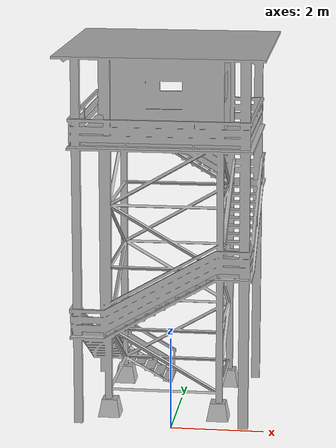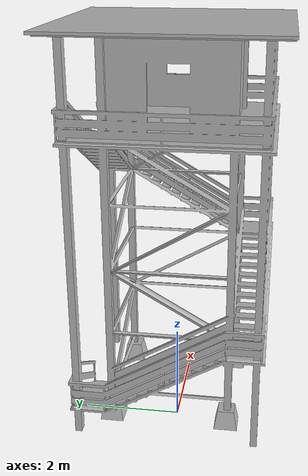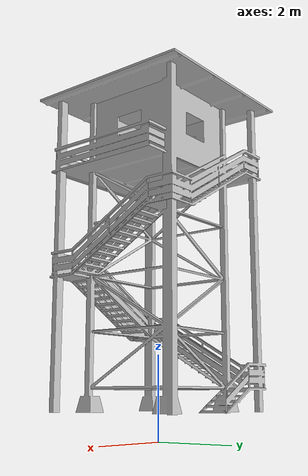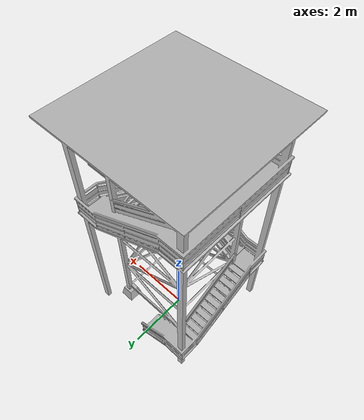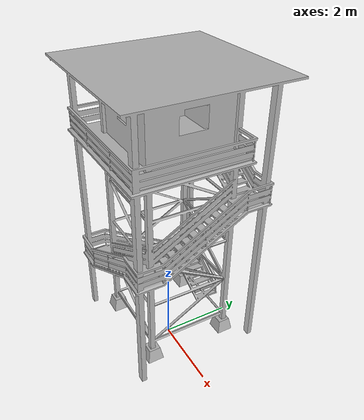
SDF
<?xml version='1.0' ?>
<sdf version="1.6">
    <model name="Watch Tower">
        <static>false</static>
        <link name="link">
            <collision name="collision">
                <pose>0 0 0 0 0 0</pose>
                <geometry>
                    <mesh>
                        <uri>meshes/wooden_watch_tower.dae</uri>
                    </mesh>
                </geometry>
            </collision>
            <visual name="visual">
                <pose>0 0 0 0 0 0</pose>
                <geometry>
                    <mesh>
                        <uri>meshes/wooden_watch_tower.dae</uri>
                    </mesh>
                </geometry>
            </visual>
        </link>
    </model>
</sdf>
